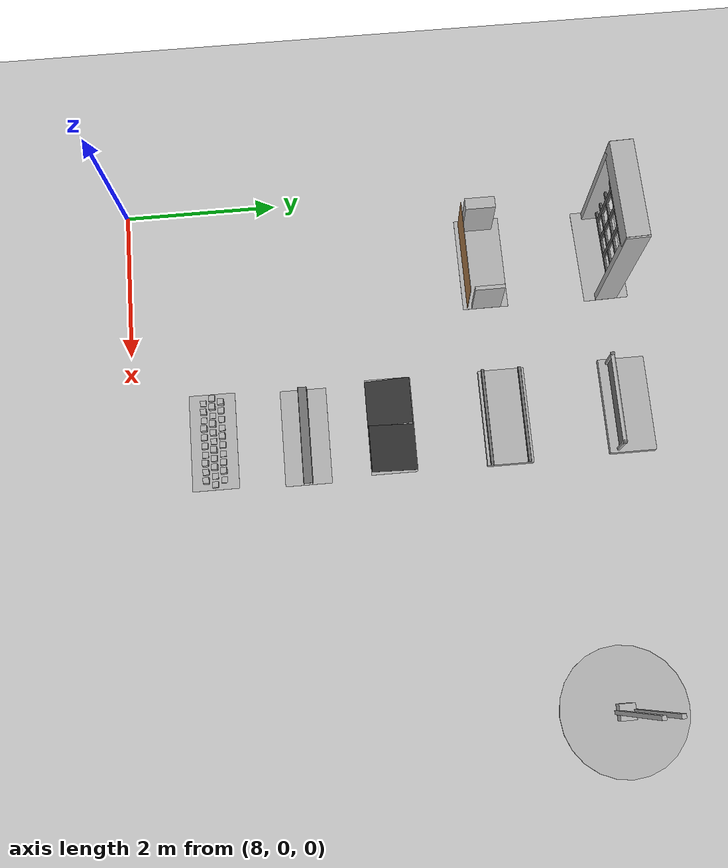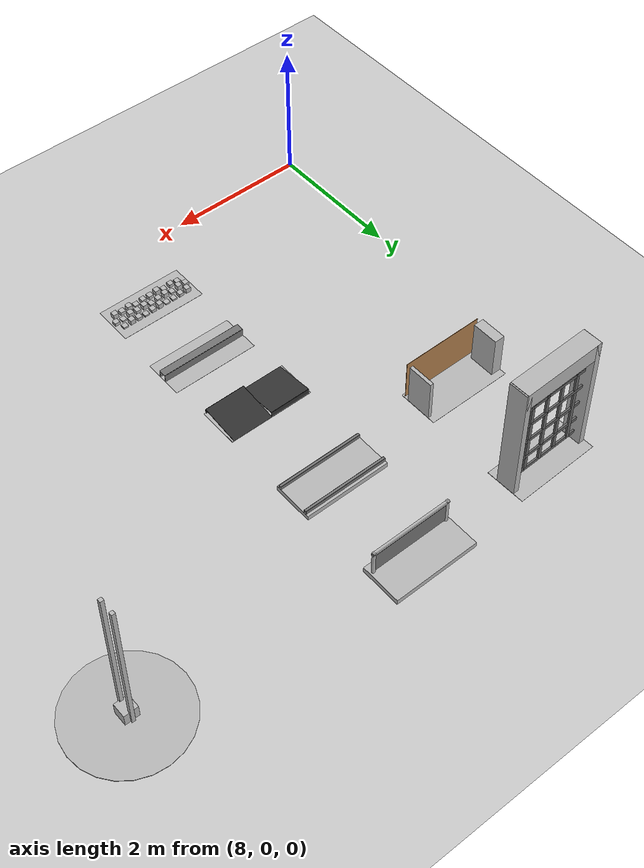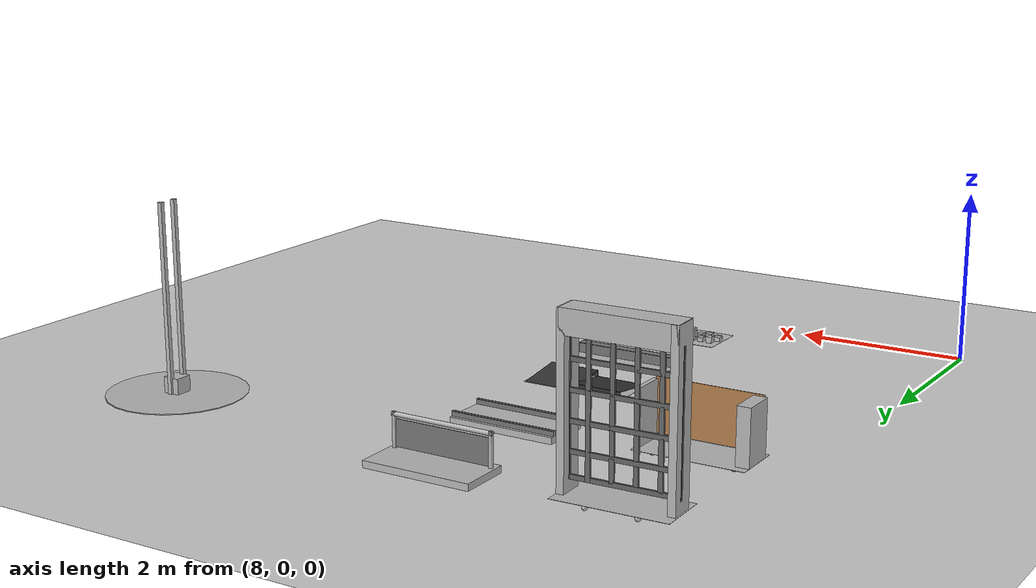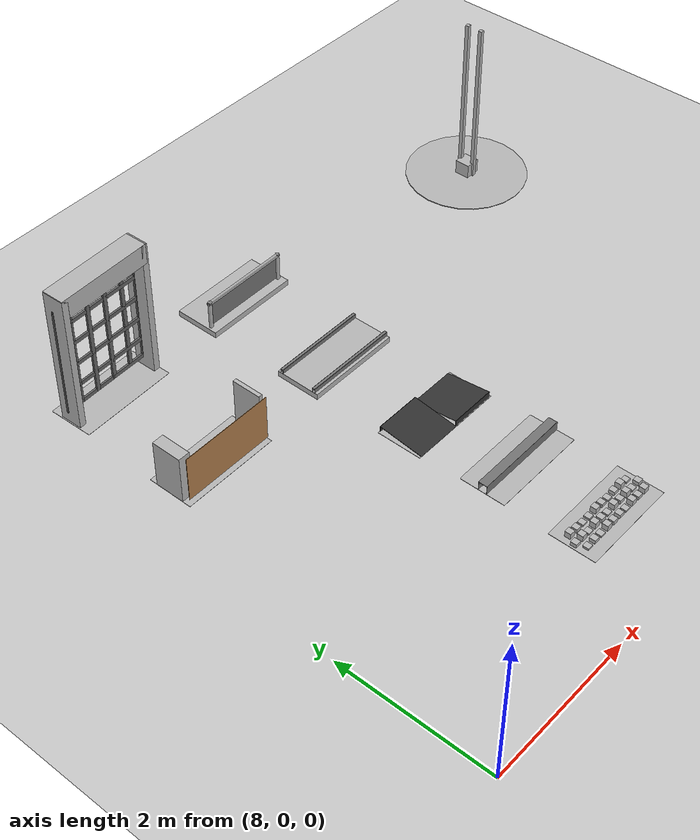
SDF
<sdf version="1.6">
 <world name="default">
  <model name="ground_plane">
   <static>1</static>
   <link name="link">
    <collision name="collision">
     <geometry><plane><normal>0 0 1</normal><size>100 100</size></plane></geometry>
     <surface>
      <contact><collide_bitmask>65535</collide_bitmask></contact>
      <friction><ode><mu>100</mu><mu2>50</mu2></ode></friction>
     </surface>
    </collision>
    <visual name="visual">
     <cast_shadows>0</cast_shadows>
     <geometry><plane><normal>0 0 1</normal><size>100 100</size></plane></geometry>
     <material>
      <script><uri>file://media/materials/scripts/gazebo.material</uri><name>Gazebo/Grey</name></script>
     </material>
    </visual>
   </link>
  </model>
  <model name="frc2016_portcullis">
   <link name="base">
    <inertial>
     <mass>50</mass>
     <pose>0 0 1.02941 0 -0 0</pose>
     <inertia><ixx>3.81711</ixx><ixy>0</ixy><ixz>0</ixz><iyy>4.87698</iyy><iyz>0</iyz><izz>1.6283</izz></inertia>
    </inertial>
    <visual name="platform">
     <pose>0 0 0.07284 0 -0 0</pose>
     <geometry><box><size>1.27 0.5842 0.003175</size></box></geometry>
    </visual>
    <collision name="platform">
     <pose>0 0 0.07284 0 -0 0</pose>
     <geometry><box><size>1.27 0.5842 0.003175</size></box></geometry>
    </collision>
    <visual name="left_column">
     <pose>0.59284 0 0.99042 0 -0 0</pose>
     <geometry><box><size>0.08375 0.28575 1.83198</size></box></geometry>
    </visual>
    <collision name="left_column">
     <pose>0.59284 0 0.99042 0 -0 0</pose>
     <geometry><box><size>0.08375 0.28575 1.83198</size></box></geometry>
    </collision>
    <visual name="right_column">
     <pose>-0.57759 0 0.99042 0 -0 0</pose>
     <geometry><box><size>0.08375 0.28575 1.83198</size></box></geometry>
    </visual>
    <collision name="right_column">
     <pose>-0.57759 0 0.99042 0 -0 0</pose>
     <geometry><box><size>0.08375 0.28575 1.83198</size></box></geometry>
    </collision>
    <visual name="top">
     <pose>-0.00034 0 1.77722 0 -0 0</pose>
     <geometry><box><size>1.22962 0.28575 0.26657</size></box></geometry>
    </visual>
    <collision name="top">
     <pose>-0.00034 0 1.77722 0 -0 0</pose>
     <geometry><box><size>1.22962 0.28575 0.26657</size></box></geometry>
    </collision>
    <visual name="castor1">
     <pose>-0.45651 -0.16234 0.03272 0 -0 0</pose>
     <geometry><sphere><radius>0.03272</radius></sphere></geometry>
    </visual>
    <collision name="castor1">
     <pose>-0.45651 -0.16234 0.03272 0 -0 0</pose>
     <geometry><sphere><radius>0.03272</radius></sphere></geometry>
    </collision>
    <visual name="castor2">
     <pose>-0.27883 0.21836 0.03272 0 -0 0</pose>
     <geometry><sphere><radius>0.03272</radius></sphere></geometry>
    </visual>
    <collision name="castor2">
     <pose>-0.27883 0.21836 0.03272 0 -0 0</pose>
     <geometry><sphere><radius>0.03272</radius></sphere></geometry>
    </collision>
    <visual name="castor3">
     <pose>0.28083 0.21906 0.03272 0 -0 0</pose>
     <geometry><sphere><radius>0.03272</radius></sphere></geometry>
    </visual>
    <collision name="castor3">
     <pose>0.28083 0.21906 0.03272 0 -0 0</pose>
     <geometry><sphere><radius>0.03272</radius></sphere></geometry>
    </collision>
    <visual name="castor4">
     <pose>0.45871 -0.16186 0.03272 0 -0 0</pose>
     <geometry><sphere><radius>0.03272</radius></sphere></geometry>
    </visual>
    <collision name="castor4">
     <pose>0.45871 -0.16186 0.03272 0 -0 0</pose>
     <geometry><sphere><radius>0.03272</radius></sphere></geometry>
    </collision>
   </link>
   <link name="gate">
    <pose>-0.0287 0.02885 0.93327 0 -0 0</pose>
    <inertial>
     <mass>2</mass>
     <inertia><ixx>3.81711</ixx><ixy>0</ixy><ixz>0</ixz><iyy>4.87698</iyy><iyz>0</iyz><izz>1.6283</izz></inertia>
    </inertial>
    <collision name="collision"><geometry><box><size>1.1938 0.02496 1.45732</size></box></geometry></collision>
    <visual name="horz_1">
     <pose>0 0 -0.70326 0 -0 0</pose>
     <geometry><box><size>1.1938 0.02496 0.0508</size></box></geometry>
     <material><ambient>0.4 0.4 0.4 1</ambient><diffuse>0.4 0.4 0.4 1</diffuse></material>
    </visual>
    <visual name="horz_2">
     <pose>0 0 -0.44926 0 -0 0</pose>
     <geometry><box><size>1.1938 0.02496 0.0508</size></box></geometry>
     <material><ambient>0.4 0.4 0.4 1</ambient><diffuse>0.4 0.4 0.4 1</diffuse></material>
    </visual>
    <visual name="horz_3">
     <pose>0 0 -0.14517 0 -0 0</pose>
     <geometry><box><size>1.1938 0.02496 0.0508</size></box></geometry>
     <material><ambient>0.4 0.4 0.4 1</ambient><diffuse>0.4 0.4 0.4 1</diffuse></material>
    </visual>
    <visual name="horz_4">
     <pose>0 0 0.16034 0 -0 0</pose>
     <geometry><box><size>1.1938 0.02496 0.0508</size></box></geometry>
     <material><ambient>0.4 0.4 0.4 1</ambient><diffuse>0.4 0.4 0.4 1</diffuse></material>
    </visual>
    <visual name="horz_5">
     <pose>0 0 0.46514 0 -0 0</pose>
     <geometry><box><size>1.1938 0.02496 0.0508</size></box></geometry>
     <material><ambient>0.4 0.4 0.4 1</ambient><diffuse>0.4 0.4 0.4 1</diffuse></material>
    </visual>
    <visual name="horz_6">
     <pose>0 0 0.72994 0 -0 0</pose>
     <geometry><box><size>1.1938 0.02496 0.0508</size></box></geometry>
     <material><ambient>0.4 0.4 0.4 1</ambient><diffuse>0.4 0.4 0.4 1</diffuse></material>
    </visual>
    <visual name="vert_1">
     <pose>-0.58448 0 0 0 -0 0</pose>
     <geometry><box><size>0.02495 0.02496 1.45732</size></box></geometry>
     <material><ambient>0.4 0.4 0.4 1</ambient><diffuse>0.4 0.4 0.4 1</diffuse></material>
    </visual>
    <visual name="vert_2">
     <pose>-0.38128 0 0 0 -0 0</pose>
     <geometry><box><size>0.0508 0.02496 1.45732</size></box></geometry>
     <material><ambient>0.4 0.4 0.4 1</ambient><diffuse>0.4 0.4 0.4 1</diffuse></material>
    </visual>
    <visual name="vert_3">
     <pose>-0.12728 0 0 0 -0 0</pose>
     <geometry><box><size>0.0508 0.02496 1.45732</size></box></geometry>
     <material><ambient>0.4 0.4 0.4 1</ambient><diffuse>0.4 0.4 0.4 1</diffuse></material>
    </visual>
    <visual name="vert_4">
     <pose>0.12672 0 0 0 -0 0</pose>
     <geometry><box><size>0.0508 0.02496 1.45732</size></box></geometry>
     <material><ambient>0.4 0.4 0.4 1</ambient><diffuse>0.4 0.4 0.4 1</diffuse></material>
    </visual>
    <visual name="vert_5">
     <pose>0.38072 0 0 0 -0 0</pose>
     <geometry><box><size>0.0508 0.02496 1.45732</size></box></geometry>
     <material><ambient>0.4 0.4 0.4 1</ambient><diffuse>0.4 0.4 0.4 1</diffuse></material>
    </visual>
    <visual name="vert_6">
     <pose>0.58392 0 0 0 -0 0</pose>
     <geometry><box><size>0.02495 0.02496 1.45732</size></box></geometry>
     <material><ambient>0.4 0.4 0.4 1</ambient><diffuse>0.4 0.4 0.4 1</diffuse></material>
    </visual>
   </link>
   <joint name="joint" type="prismatic">
    <parent>base</parent>
    <child>gate</child>
    <axis>
     <xyz>0 0 1</xyz>
     <limit><lower>0</lower><upper>1</upper></limit>
     <use_parent_model_frame>0</use_parent_model_frame>
     <dynamics><spring_reference>0</spring_reference><spring_stiffness>0</spring_stiffness></dynamics>
    </axis>
   </joint>
   <pose>9.10746 6.30429 0.01 0 -0 0.029411</pose>
  </model>
  <model name="frc2016_lowbar">
   <link name="base">
    <inertial>
     <mass>50</mass>
     <inertia>
      <ixx>0.035543</ixx>
      <ixy>0</ixy>
      <ixz>0</ixz>
      <iyy>0.134412</iyy>
      <iyz>0</iyz>
      <izz>0.165376</izz>
     </inertia>
    </inertial>
    <visual name="platform">
     <pose>0 0 0.039065 0 -0 0</pose>
     <geometry><box><size>1.26 0.5996 0.07813</size></box></geometry>
    </visual>
    <collision name="platform">
     <pose>0 0 0.039065 0 -0 0</pose>
     <geometry><box><size>1.27 0.6096 0.07813</size></box></geometry>
    </collision>
    <visual name="right_column">
     <pose>-0.57845 -0.18464 0.26863 0 -0 0</pose>
     <geometry><cylinder><radius>0.0254</radius><length>0.381</length></cylinder></geometry>
    </visual>
    <collision name="right_column">
     <pose>-0.57845 -0.18464 0.26863 0 -0 0</pose>
     <geometry><cylinder><radius>0.0254</radius><length>0.381</length></cylinder></geometry>
    </collision>
    <visual name="left_column">
     <pose>0.57845 -0.18464 0.26863 0 -0 0</pose>
     <geometry><cylinder><radius>0.0254</radius><length>0.381</length></cylinder></geometry>
    </visual>
    <collision name="left_column">
     <pose>0.57845 -0.18464 0.26863 0 -0 0</pose>
     <geometry><cylinder><radius>0.0254</radius><length>0.381</length></cylinder></geometry>
    </collision>
    <visual name="horizontal">
     <pose>0 -0.18464 0.43556 0 1.5707 0</pose>
     <geometry><cylinder><radius>0.0254</radius><length>1.2018</length></cylinder></geometry>
    </visual>
    <collision name="horizontal">
     <pose>0 -0.18464 0.43556 0 1.5707 0</pose>
     <geometry><cylinder><radius>0.0254</radius><length>1.2018</length></cylinder></geometry>
    </collision>
   </link>
   <link name="wall">
    <pose>0 -0.1778 0.24323 0 -0 0</pose>
    <inertial>
     <mass>1</mass>
     <inertia>
      <ixx>0.00774528</ixx>
      <ixy>0</ixy>
      <ixz>0</ixz>
      <iyy>0.116613</iyy>
      <iyz>0</iyz>
      <izz>0.108874</izz>
     </inertia>
    </inertial>
    <visual name="visual">
     <geometry><box><size>1.1176 0.00635 0.3</size></box></geometry>
     <material><ambient>0.46 0.46 0.46 1</ambient><diffuse>0.46 0.46 0.46 1</diffuse></material>
    </visual>
    <collision name="collision"><geometry><box><size>1.143 0.00635 0.3</size></box></geometry></collision>
   </link>
   <joint name="bar_joint" type="revolute">
    <pose>0 0 0.36378 0 -0 0</pose>
    <parent>base</parent>
    <child>wall</child>
    <axis>
     <xyz>1 0 0</xyz>
     <limit><lower>-1.5707</lower><upper>1.5707</upper></limit>
     <use_parent_model_frame>0</use_parent_model_frame>
     <dynamics><spring_reference>0</spring_reference><spring_stiffness>0</spring_stiffness></dynamics>
    </axis>
   </joint>
   <pose>11.2078 6.40315 0.009984 0 2.5e-05 0.003719</pose>
  </model>
  <model name="frc2016_moat">
   <static>1</static>
   <link name="link">
    <inertial>
     <mass>10</mass>
     <pose>0 0 0.06738 0 -0 0</pose>
     <inertia><ixx>0.312195</ixx><ixy>0</ixy><ixz>0</ixz><iyy>1.35927</iyy><iyz>0</iyz><izz>1.64109</izz></inertia>
    </inertial>
    <visual name="platform">
     <pose>0 0 0.0381 0 -0 0</pose>
     <geometry><box><size>1.27 0.5969 0.0762</size></box></geometry>
    </visual>
    <collision name="platform">
     <pose>0 0 0.0381 0 -0 0</pose>
     <geometry><box><size>1.27 0.5969 0.0762</size></box></geometry>
    </collision>
    <visual name="tube1_side1">
     <pose>0 -0.25876 0.10301 0 -0 0</pose>
     <geometry><box><size>1.27 0.003175 0.0635</size></box></geometry>
     <material><ambient>0.46 0.46 0.46 1</ambient><diffuse>0.46 0.46 0.46 1</diffuse></material>
    </visual>
    <collision name="tube1_side1">
     <pose>0 -0.25876 0.10301 0 -0 0</pose>
     <geometry><box><size>1.27 0.003175 0.0635</size></box></geometry>
    </collision>
    <visual name="tube1_side2">
     <pose>0 -0.22384 0.10301 0 -0 0</pose>
     <geometry><box><size>1.27 0.003175 0.0635</size></box></geometry>
     <material><ambient>0.46 0.46 0.46 1</ambient><diffuse>0.46 0.46 0.46 1</diffuse></material>
    </visual>
    <collision name="tube1_side2">
     <pose>0 -0.22384 0.10301 0 -0 0</pose>
     <geometry><box><size>1.27 0.003175 0.0635</size></box></geometry>
    </collision>
    <visual name="tube1_top">
     <pose>0 -0.2413 0.13317 0 -0 0</pose>
     <geometry><box><size>1.27 0.0381 0.003175</size></box></geometry>
     <material><ambient>0.46 0.46 0.46 1</ambient><diffuse>0.46 0.46 0.46 1</diffuse></material>
    </visual>
    <collision name="tube1_top">
     <pose>0 -0.2413 0.13317 0 -0 0</pose>
     <geometry><box><size>1.27 0.0381 0.003175</size></box></geometry>
    </collision>
    <visual name="tube2_side1">
     <pose>0 0.22384 0.10301 0 -0 0</pose>
     <geometry><box><size>1.27 0.003175 0.0635</size></box></geometry>
     <material><ambient>0.46 0.46 0.46 1</ambient><diffuse>0.46 0.46 0.46 1</diffuse></material>
    </visual>
    <collision name="tube2_side1">
     <pose>0 0.22384 0.10301 0 -0 0</pose>
     <geometry><box><size>1.27 0.003175 0.0635</size></box></geometry>
    </collision>
    <visual name="tube2_side2">
     <pose>0 0.25876 0.10301 0 -0 0</pose>
     <geometry><box><size>1.27 0.003175 0.0635</size></box></geometry>
     <material><ambient>0.46 0.46 0.46 1</ambient><diffuse>0.46 0.46 0.46 1</diffuse></material>
    </visual>
    <collision name="tube2_side2">
     <pose>0 0.25876 0.10301 0 -0 0</pose>
     <geometry><box><size>1.27 0.003175 0.0635</size></box></geometry>
    </collision>
    <visual name="tube2_top">
     <pose>0 0.2413 0.13317 0 -0 0</pose>
     <geometry><box><size>1.27 0.0381 0.003175</size></box></geometry>
     <material><ambient>0.46 0.46 0.46 1</ambient><diffuse>0.46 0.46 0.46 1</diffuse></material>
    </visual>
    <collision name="tube2_top">
     <pose>0 0.2413 0.13317 0 -0 0</pose>
     <geometry><box><size>1.27 0.0381 0.003175</size></box></geometry>
    </collision>
   </link>
   <pose>11.2315 4.82014 0 0 -0 0</pose>
  </model>
  <model name="frc2016_ramparts">
   <static>1</static>
   <link name="link">
    <visual name="platform">
     <pose>0 0 0.06967 0 -0 0</pose>
     <geometry><box><size>1.27 0.5969 0.003175</size></box></geometry>
    </visual>
    <collision name="platform">
     <pose>0 0 0.06967 0 -0 0</pose>
     <geometry><box><size>1.27 0.5969 0.003175</size></box></geometry>
    </collision>
    <visual name="ramp1">
     <pose>0.30472 0.00588 0.1109 -0.13 0 0</pose>
     <geometry><box><size>0.60957 0.588891 0.00462</size></box></geometry>
     <material><ambient>0.2 0.2 0.2 1</ambient><diffuse>0.2 0.2 0.2 1</diffuse></material>
    </visual>
    <collision name="ramp1">
     <pose>0.30472 0.00588 0.1109 -0.13 0 0</pose>
     <geometry><box><size>0.60957 0.588891 0.00462</size></box></geometry>
    </collision>
    <visual name="up1">
     <pose>0.30472 -0.28806 0.11072 0 -0 0</pose>
     <geometry><box><size>0.60957 0.00462 0.07872</size></box></geometry>
     <material><ambient>0.2 0.2 0.2 1</ambient><diffuse>0.2 0.2 0.2 1</diffuse></material>
    </visual>
    <collision name="up1">
     <pose>0.30472 -0.28806 0.11072 0 -0 0</pose>
     <geometry><box><size>0.60957 0.00462 0.07872</size></box></geometry>
    </collision>
    <visual name="ramp2">
     <pose>-0.30472 -0.00619 0.1109 0.13 -0 0</pose>
     <geometry><box><size>0.60957 0.588891 0.00462</size></box></geometry>
     <material><ambient>0.2 0.2 0.2 1</ambient><diffuse>0.2 0.2 0.2 1</diffuse></material>
    </visual>
    <collision name="ramp2">
     <pose>-0.30472 -0.00619 0.1109 0.13 -0 0</pose>
     <geometry><box><size>0.60957 0.588891 0.00462</size></box></geometry>
    </collision>
    <visual name="up2">
     <pose>-0.30472 0.28806 0.11072 0 -0 0</pose>
     <geometry><box><size>0.60957 0.00462 0.07872</size></box></geometry>
     <material><ambient>0.2 0.2 0.2 1</ambient><diffuse>0.2 0.2 0.2 1</diffuse></material>
    </visual>
    <collision name="up2">
     <pose>-0.30472 0.28806 0.11072 0 -0 0</pose>
     <geometry><box><size>0.60957 0.00462 0.07872</size></box></geometry>
    </collision>
   </link>
   <pose>11.2311 3.32895 0 0 -0 0</pose>
  </model>
  <model name="frc2016_rockwall">
   <static>1</static>
   <link name="link">
    <inertial>
     <mass>10</mass>
     <pose>0 0 0.08974 0 -0 0</pose>
     <inertia><ixx>0.327091</ixx><ixy>0</ixy><ixz>0</ixz><iyy>1.37417</iyy><iyz>0</iyz><izz>1.64109</izz></inertia>
    </inertial>
    <visual name="platform">
     <pose>0 0 0.06432 0 -0 0</pose>
     <geometry><box><size>1.27 0.5969 0.003175</size></box></geometry>
    </visual>
    <collision name="platform">
     <pose>0 0 0.06432 0 -0 0</pose>
     <geometry><box><size>1.27 0.5969 0.003175</size></box></geometry>
    </collision>
    <visual name="up1">
     <pose>0 0.05166 0.12537 0 -0 0</pose>
     <geometry><box><size>1.27 0.00462 0.11892</size></box></geometry>
     <material><ambient>0.46 0.46 0.46 1</ambient><diffuse>0.46 0.46 0.46 1</diffuse></material>
    </visual>
    <collision name="up1">
     <pose>0 0.05166 0.12537 0 -0 0</pose>
     <geometry><box><size>1.27 0.00462 0.11892</size></box></geometry>
    </collision>
    <visual name="up2">
     <pose>0 -0.05801 0.12537 0 -0 0</pose>
     <geometry><box><size>1.27 0.00462 0.11892</size></box></geometry>
     <material><ambient>0.46 0.46 0.46 1</ambient><diffuse>0.46 0.46 0.46 1</diffuse></material>
    </visual>
    <collision name="up2">
     <pose>0 -0.05801 0.12537 0 -0 0</pose>
     <geometry><box><size>1.27 0.00462 0.11892</size></box></geometry>
    </collision>
    <visual name="top">
     <pose>0 -0.00249 0.18252 0 -0 0</pose>
     <geometry><box><size>1.27 0.1143 0.00462</size></box></geometry>
     <material><ambient>0.46 0.46 0.46 1</ambient><diffuse>0.46 0.46 0.46 1</diffuse></material>
    </visual>
    <collision name="top">
     <pose>0 -0.00249 0.18252 0 -0 0</pose>
     <geometry><box><size>1.27 0.1143 0.00462</size></box></geometry>
    </collision>
   </link>
   <pose>11.2866 2.22634 0 0 -0 0</pose>
  </model>
  <model name="frc2016_roughterrain">
   <static>1</static>
   <link name="link">
    <visual name="platform">
     <pose>0 0 0.08269 0 -0 0</pose>
     <geometry><box><size>1.27 0.5969 0.003175</size></box></geometry>
    </visual>
    <collision name="platform">
     <pose>0 0 0.08269 0 -0 0</pose>
     <geometry><box><size>1.27 0.5969 0.003175</size></box></geometry>
    </collision>
    <visual name="row1_block1_sm">
     <pose>0.51435 0.1143 0.09698 0 -0 0</pose>
     <geometry><box><size>0.0762 0.0762 0.0254</size></box></geometry>
    </visual>
    <collision name="row1_block1_sm">
     <pose>0.51435 0.1143 0.09698 0 -0 0</pose>
     <geometry><box><size>0.0762 0.0762 0.0254</size></box></geometry>
    </collision>
    <visual name="row1_block2_lg">
     <pose>0.40005 0.1143 0.12238 0 -0 0</pose>
     <geometry><box><size>0.0762 0.0762 0.0762</size></box></geometry>
    </visual>
    <collision name="row1_block2_lg">
     <pose>0.40005 0.1143 0.12238 0 -0 0</pose>
     <geometry><box><size>0.0762 0.0762 0.0762</size></box></geometry>
    </collision>
    <visual name="row1_block3_md">
     <pose>0.28575 0.1143 0.10968 0 -0 0</pose>
     <geometry><box><size>0.0762 0.0762 0.0508</size></box></geometry>
    </visual>
    <collision name="row1_block3_md">
     <pose>0.28575 0.1143 0.10968 0 -0 0</pose>
     <geometry><box><size>0.0762 0.0762 0.0508</size></box></geometry>
    </collision>
    <visual name="row1_block4_sm">
     <pose>0.17145 0.1143 0.09698 0 -0 0</pose>
     <geometry><box><size>0.0762 0.0762 0.0254</size></box></geometry>
    </visual>
    <collision name="row1_block4_sm">
     <pose>0.17145 0.1143 0.09698 0 -0 0</pose>
     <geometry><box><size>0.0762 0.0762 0.0254</size></box></geometry>
    </collision>
    <visual name="row1_block5_md">
     <pose>0.05715 0.1143 0.10968 0 -0 0</pose>
     <geometry><box><size>0.0762 0.0762 0.0508</size></box></geometry>
    </visual>
    <collision name="row1_block5_md">
     <pose>0.05715 0.1143 0.10968 0 -0 0</pose>
     <geometry><box><size>0.0762 0.0762 0.0508</size></box></geometry>
    </collision>
    <visual name="row1_block6_lg">
     <pose>-0.05715 0.1143 0.12238 0 -0 0</pose>
     <geometry><box><size>0.0762 0.0762 0.0762</size></box></geometry>
    </visual>
    <collision name="row1_block6_lg">
     <pose>-0.05715 0.1143 0.12238 0 -0 0</pose>
     <geometry><box><size>0.0762 0.0762 0.0762</size></box></geometry>
    </collision>
    <visual name="row1_block7_sm">
     <pose>-0.17145 0.1143 0.09698 0 -0 0</pose>
     <geometry><box><size>0.0762 0.0762 0.0254</size></box></geometry>
    </visual>
    <collision name="row1_block7_sm">
     <pose>-0.17145 0.1143 0.09698 0 -0 0</pose>
     <geometry><box><size>0.0762 0.0762 0.0254</size></box></geometry>
    </collision>
    <visual name="row1_block8_sm">
     <pose>-0.28575 0.1143 0.09698 0 -0 0</pose>
     <geometry><box><size>0.0762 0.0762 0.0254</size></box></geometry>
    </visual>
    <collision name="row1_block8_sm">
     <pose>-0.28575 0.1143 0.09698 0 -0 0</pose>
     <geometry><box><size>0.0762 0.0762 0.0254</size></box></geometry>
    </collision>
    <visual name="row1_block9_md">
     <pose>-0.40005 0.1143 0.10968 0 -0 0</pose>
     <geometry><box><size>0.0762 0.0762 0.0508</size></box></geometry>
    </visual>
    <collision name="row1_block9_md">
     <pose>-0.40005 0.1143 0.10968 0 -0 0</pose>
     <geometry><box><size>0.0762 0.0762 0.0508</size></box></geometry>
    </collision>
    <visual name="row1_block10_lg">
     <pose>-0.51435 0.1143 0.12238 0 -0 0</pose>
     <geometry><box><size>0.0762 0.0762 0.0762</size></box></geometry>
    </visual>
    <collision name="row1_block10_lg">
     <pose>-0.51435 0.1143 0.12238 0 -0 0</pose>
     <geometry><box><size>0.0762 0.0762 0.0762</size></box></geometry>
    </collision>
    <visual name="row2_block1_md">
     <pose>0.5715 0 0.10968 0 -0 0</pose>
     <geometry><box><size>0.0762 0.0762 0.0508</size></box></geometry>
    </visual>
    <collision name="row2_block1_md">
     <pose>0.5715 0 0.10968 0 -0 0</pose>
     <geometry><box><size>0.0762 0.0762 0.0508</size></box></geometry>
    </collision>
    <visual name="row2_block2_sm">
     <pose>0.4572 0 0.09698 0 -0 0</pose>
     <geometry><box><size>0.0762 0.0762 0.0254</size></box></geometry>
    </visual>
    <collision name="row2_block2_sm">
     <pose>0.4572 0 0.09698 0 -0 0</pose>
     <geometry><box><size>0.0762 0.0762 0.0254</size></box></geometry>
    </collision>
    <visual name="row2_block3_lg">
     <pose>0.3429 0 0.12238 0 -0 0</pose>
     <geometry><box><size>0.0762 0.0762 0.0762</size></box></geometry>
    </visual>
    <collision name="row2_block3_lg">
     <pose>0.3429 0 0.12238 0 -0 0</pose>
     <geometry><box><size>0.0762 0.0762 0.0762</size></box></geometry>
    </collision>
    <visual name="row2_block4_md">
     <pose>0.2286 0 0.10968 0 -0 0</pose>
     <geometry><box><size>0.0762 0.0762 0.0508</size></box></geometry>
    </visual>
    <collision name="row2_block4_md">
     <pose>0.2286 0 0.10968 0 -0 0</pose>
     <geometry><box><size>0.0762 0.0762 0.0508</size></box></geometry>
    </collision>
    <visual name="row2_block5_lg">
     <pose>0.1143 0 0.12238 0 -0 0</pose>
     <geometry><box><size>0.0762 0.0762 0.0762</size></box></geometry>
    </visual>
    <collision name="row2_block5_lg">
     <pose>0.1143 0 0.12238 0 -0 0</pose>
     <geometry><box><size>0.0762 0.0762 0.0762</size></box></geometry>
    </collision>
    <visual name="row2_block6_sm">
     <pose>0 0 0.09698 0 -0 0</pose>
     <geometry><box><size>0.0762 0.0762 0.0254</size></box></geometry>
    </visual>
    <collision name="row2_block6_sm">
     <pose>0 0 0.09698 0 -0 0</pose>
     <geometry><box><size>0.0762 0.0762 0.0254</size></box></geometry>
    </collision>
    <visual name="row2_block7_md">
     <pose>-0.1143 0 0.10968 0 -0 0</pose>
     <geometry><box><size>0.0762 0.0762 0.0508</size></box></geometry>
    </visual>
    <collision name="row2_block7_md">
     <pose>-0.1143 0 0.10968 0 -0 0</pose>
     <geometry><box><size>0.0762 0.0762 0.0508</size></box></geometry>
    </collision>
    <visual name="row2_block8_lg">
     <pose>-0.2286 0 0.12238 0 -0 0</pose>
     <geometry><box><size>0.0762 0.0762 0.0762</size></box></geometry>
    </visual>
    <collision name="row2_block8_lg">
     <pose>-0.2286 0 0.12238 0 -0 0</pose>
     <geometry><box><size>0.0762 0.0762 0.0762</size></box></geometry>
    </collision>
    <visual name="row2_block9_sm">
     <pose>-0.3429 0 0.09698 0 -0 0</pose>
     <geometry><box><size>0.0762 0.0762 0.0254</size></box></geometry>
    </visual>
    <collision name="row2_block9_sm">
     <pose>-0.3429 0 0.09698 0 -0 0</pose>
     <geometry><box><size>0.0762 0.0762 0.0254</size></box></geometry>
    </collision>
    <visual name="row2_block10_lg">
     <pose>-0.4572 0 0.12238 0 -0 0</pose>
     <geometry><box><size>0.0762 0.0762 0.0762</size></box></geometry>
    </visual>
    <collision name="row2_block10_lg">
     <pose>-0.4572 0 0.12238 0 -0 0</pose>
     <geometry><box><size>0.0762 0.0762 0.0762</size></box></geometry>
    </collision>
    <visual name="row2_block11_md">
     <pose>-0.5715 0 0.10968 0 -0 0</pose>
     <geometry><box><size>0.0762 0.0762 0.0508</size></box></geometry>
    </visual>
    <collision name="row2_block11_md">
     <pose>-0.5715 0 0.10968 0 -0 0</pose>
     <geometry><box><size>0.0762 0.0762 0.0508</size></box></geometry>
    </collision>
    <visual name="row3_block1_lg">
     <pose>0.51435 -0.1143 0.12238 0 -0 0</pose>
     <geometry><box><size>0.0762 0.0762 0.0762</size></box></geometry>
    </visual>
    <collision name="row3_block1_lg">
     <pose>0.51435 -0.1143 0.12238 0 -0 0</pose>
     <geometry><box><size>0.0762 0.0762 0.0762</size></box></geometry>
    </collision>
    <visual name="row3_block2_md">
     <pose>0.40005 -0.1143 0.10968 0 -0 0</pose>
     <geometry><box><size>0.0762 0.0762 0.0508</size></box></geometry>
    </visual>
    <collision name="row3_block2_md">
     <pose>0.40005 -0.1143 0.10968 0 -0 0</pose>
     <geometry><box><size>0.0762 0.0762 0.0508</size></box></geometry>
    </collision>
    <visual name="row3_block3_lg">
     <pose>0.28575 -0.1143 0.12238 0 -0 0</pose>
     <geometry><box><size>0.0762 0.0762 0.0762</size></box></geometry>
    </visual>
    <collision name="row3_block3_lg">
     <pose>0.28575 -0.1143 0.12238 0 -0 0</pose>
     <geometry><box><size>0.0762 0.0762 0.0762</size></box></geometry>
    </collision>
    <visual name="row3_block4_sm">
     <pose>0.17145 -0.1143 0.09698 0 -0 0</pose>
     <geometry><box><size>0.0762 0.0762 0.0254</size></box></geometry>
    </visual>
    <collision name="row3_block4_sm">
     <pose>0.17145 -0.1143 0.09698 0 -0 0</pose>
     <geometry><box><size>0.0762 0.0762 0.0254</size></box></geometry>
    </collision>
    <visual name="row3_block5_md">
     <pose>0.05715 -0.1143 0.10968 0 -0 0</pose>
     <geometry><box><size>0.0762 0.0762 0.0508</size></box></geometry>
    </visual>
    <collision name="row3_block5_md">
     <pose>0.05715 -0.1143 0.10968 0 -0 0</pose>
     <geometry><box><size>0.0762 0.0762 0.0508</size></box></geometry>
    </collision>
    <visual name="row3_block6_md">
     <pose>-0.05715 -0.1143 0.10968 0 -0 0</pose>
     <geometry><box><size>0.0762 0.0762 0.0508</size></box></geometry>
    </visual>
    <collision name="row3_block6_md">
     <pose>-0.05715 -0.1143 0.10968 0 -0 0</pose>
     <geometry><box><size>0.0762 0.0762 0.0508</size></box></geometry>
    </collision>
    <visual name="row3_block7_lg">
     <pose>-0.17145 -0.1143 0.12238 0 -0 0</pose>
     <geometry><box><size>0.0762 0.0762 0.0762</size></box></geometry>
    </visual>
    <collision name="row3_block7_lg">
     <pose>-0.17145 -0.1143 0.12238 0 -0 0</pose>
     <geometry><box><size>0.0762 0.0762 0.0762</size></box></geometry>
    </collision>
    <visual name="row3_block8_sm">
     <pose>-0.28575 -0.1143 0.09698 0 -0 0</pose>
     <geometry><box><size>0.0762 0.0762 0.0254</size></box></geometry>
    </visual>
    <collision name="row3_block8_sm">
     <pose>-0.28575 -0.1143 0.09698 0 -0 0</pose>
     <geometry><box><size>0.0762 0.0762 0.0254</size></box></geometry>
    </collision>
    <visual name="row3_block9_md">
     <pose>-0.40005 -0.1143 0.10968 0 -0 0</pose>
     <geometry><box><size>0.0762 0.0762 0.0508</size></box></geometry>
    </visual>
    <collision name="row3_block9_md">
     <pose>-0.40005 -0.1143 0.10968 0 -0 0</pose>
     <geometry><box><size>0.0762 0.0762 0.0508</size></box></geometry>
    </collision>
    <visual name="row3_block10_sm">
     <pose>-0.51435 -0.1143 0.09698 0 -0 0</pose>
     <geometry><box><size>0.0762 0.0762 0.0254</size></box></geometry>
    </visual>
    <collision name="row3_block10_sm">
     <pose>-0.51435 -0.1143 0.09698 0 -0 0</pose>
     <geometry><box><size>0.0762 0.0762 0.0254</size></box></geometry>
    </collision>
   </link>
   <pose>11.2577 1.04643 0 0 -0 0</pose>
  </model>
  <model name="frc2016_sallyport">
   <link name="base">
    <inertial>
     <mass>50</mass>
     <pose>0 0 0.35406 0 -0 0</pose>
     <inertia><ixx>0.727808</ixx><ixy>0</ixy><ixz>0</ixz><iyy>1.77488</iyy><iyz>0</iyz><izz>1.64109</izz></inertia>
    </inertial>
    <visual name="platform">
     <pose>0 0 0.06974 0 -0 0</pose>
     <geometry><box><size>1.27 0.5969 0.003175</size></box></geometry>
    </visual>
    <collision name="platform">
     <pose>0 0 0.06974 0 -0 0</pose>
     <geometry><box><size>1.27 0.5969 0.003175</size></box></geometry>
    </collision>
    <visual name="left_column">
     <pose>-0.5588 0.00318 0.38876 0 -0 0</pose>
     <geometry><box><size>0.1524 0.38735 0.635</size></box></geometry>
    </visual>
    <collision name="left_column">
     <pose>-0.5588 0.00318 0.38876 0 -0 0</pose>
     <geometry><box><size>0.1524 0.38735 0.635</size></box></geometry>
    </collision>
    <visual name="right_column">
     <pose>0.6096 0.00635 0.38876 0 -0 0</pose>
     <geometry><box><size>0.0508 0.381 0.635</size></box></geometry>
    </visual>
    <collision name="right_column">
     <pose>0.6096 0.00635 0.38876 0 -0 0</pose>
     <geometry><box><size>0.0508 0.381 0.635</size></box></geometry>
    </collision>
    <visual name="castor1">
     <pose>-0.45886 0.15389 0.03487 0 -0 0</pose>
     <geometry><sphere><radius>0.03487</radius></sphere></geometry>
    </visual>
    <collision name="castor1">
     <pose>-0.45886 0.15389 0.03487 0 -0 0</pose>
     <geometry><sphere><radius>0.03487</radius></sphere></geometry>
    </collision>
    <visual name="castor2">
     <pose>-0.28117 -0.22559 0.03487 0 -0 0</pose>
     <geometry><sphere><radius>0.03487</radius></sphere></geometry>
    </visual>
    <collision name="castor2">
     <pose>-0.28117 -0.22559 0.03487 0 -0 0</pose>
     <geometry><sphere><radius>0.03487</radius></sphere></geometry>
    </collision>
    <visual name="castor3">
     <pose>0.27933 -0.2272 0.03487 0 -0 0</pose>
     <geometry><sphere><radius>0.03487</radius></sphere></geometry>
    </visual>
    <collision name="castor3">
     <pose>0.27933 -0.2272 0.03487 0 -0 0</pose>
     <geometry><sphere><radius>0.03487</radius></sphere></geometry>
    </collision>
    <visual name="castor4">
     <pose>0.4571 0.15424 0.03487 0 -0 0</pose>
     <geometry><sphere><radius>0.03487</radius></sphere></geometry>
    </visual>
    <collision name="castor4">
     <pose>0.4571 0.15424 0.03487 0 -0 0</pose>
     <geometry><sphere><radius>0.03487</radius></sphere></geometry>
    </collision>
   </link>
   <link name="door">
    <pose>0.02255 -0.24321 0.40332 0 -0 0</pose>
    <inertial>
     <pose>0 0 0 -1.5707 0 0</pose>
     <mass>2</mass>
     <inertia>
      <ixx>0.0619421</ixx>
      <ixy>0</ixy>
      <ixz>0</ixz>
      <iyy>0.246462</iyy>
      <iyz>0</iyz>
      <izz>0.30839</izz>
     </inertia>
    </inertial>
    <visual name="visual">
     <geometry><box><size>1.21603 0.00635 0.6096</size></box></geometry>
     <material><script><name>Gazebo/WoodFloor</name><uri>__default__</uri></script></material>
    </visual>
    <collision name="collision"><geometry><box><size>1.21603 0.00635 0.6096</size></box></geometry></collision>
   </link>
   <joint name="door_joint" type="revolute">
    <pose>-0.608015 0 0 0 -0 0</pose>
    <parent>base</parent>
    <child>door</child>
    <axis>
     <xyz>0 0 1</xyz>
     <limit><lower>-3.1415</lower><upper>0</upper></limit>
     <use_parent_model_frame>0</use_parent_model_frame>
     <dynamics><spring_reference>0</spring_reference><spring_stiffness>0</spring_stiffness></dynamics>
    </axis>
   </joint>
   <pose>9.09516 4.71412 0.009998 -1e-06 5e-06 0.005134</pose>
  </model>
  <model name="mass_on_rails">
   <link name="base">
    <inertial>
     <mass>100</mass>
     <inertia><ixx>1</ixx><ixy>0</ixy><ixz>0</ixz><iyy>1</iyy><iyz>0</iyz><izz>1</izz></inertia>
    </inertial>
    <visual name="vis_base">
     <pose>0 0 0.01 0 -0 0</pose>
     <geometry><cylinder><radius>0.8</radius><length>0.01</length></cylinder></geometry>
    </visual>
    <collision name="col_base">
     <pose>0 0 0.01 0 -0 0</pose>
     <geometry><cylinder><radius>0.8</radius><length>0.01</length></cylinder></geometry>
    </collision>
    <visual name="vis_rail1">
     <pose>0 0.1 1.1 0 -0 0</pose>
     <geometry><box><size>0.05 0.05 2.2</size></box></geometry>
    </visual>
    <collision name="col_rail1">
     <pose>0 0.1 1.1 0 -0 0</pose>
     <geometry><box><size>0.05 0.05 2.2</size></box></geometry>
    </collision>
    <visual name="vis_rail2">
     <pose>0 -0.1 1.1 0 -0 0</pose>
     <geometry><box><size>0.05 0.05 2.2</size></box></geometry>
    </visual>
    <collision name="col_rail2">
     <pose>0 -0.1 1.1 0 -0 0</pose>
     <geometry><box><size>0.05 0.05 2.2</size></box></geometry>
    </collision>
   </link>
   <link name="mass">
    <inertial>
     <mass>0.1</mass>
     <pose>0 0 0.1 0 -0 0</pose>
     <inertia><ixx>0.00067</ixx><ixy>0</ixy><ixz>0</ixz><iyy>0.00067</iyy><iyz>0</iyz><izz>0.00067</izz></inertia>
    </inertial>
    <visual name="visual">
     <pose>0 0 0.1 0 -0 0</pose>
     <geometry><box><size>0.2 0.2 0.2</size></box></geometry>
    </visual>
    <collision name="collision">
     <pose>0 0 0.1 0 -0 0</pose>
     <geometry><box><size>0.2 0.2 0.2</size></box></geometry>
    </collision>
   </link>
   <joint name="joint" type="prismatic">
    <parent>base</parent>
    <child>mass</child>
    <axis>
     <dynamics>
      <damping>0.01</damping>
      <friction>0.01</friction>
      <spring_reference>0</spring_reference>
      <spring_stiffness>0</spring_stiffness>
     </dynamics>
     <xyz>0 0 1</xyz>
     <limit><lower>0</lower><upper>2</upper></limit>
     <use_parent_model_frame>0</use_parent_model_frame>
    </axis>
   </joint>
   <pose>15.0473 5.86343 0.01 1e-06 0 -2e-06</pose>
  </model>
 </world>
</sdf>
